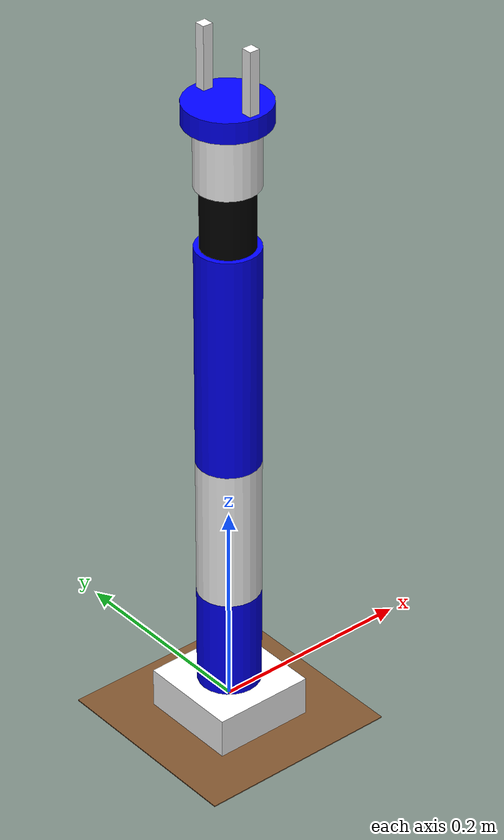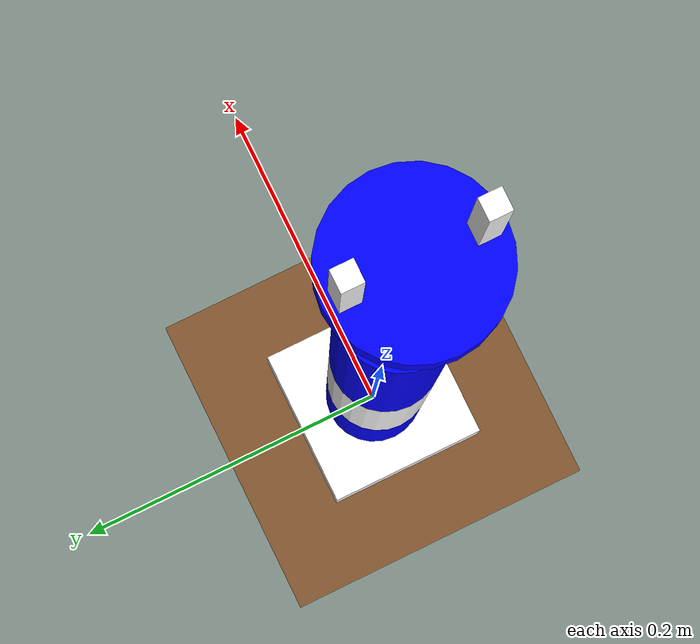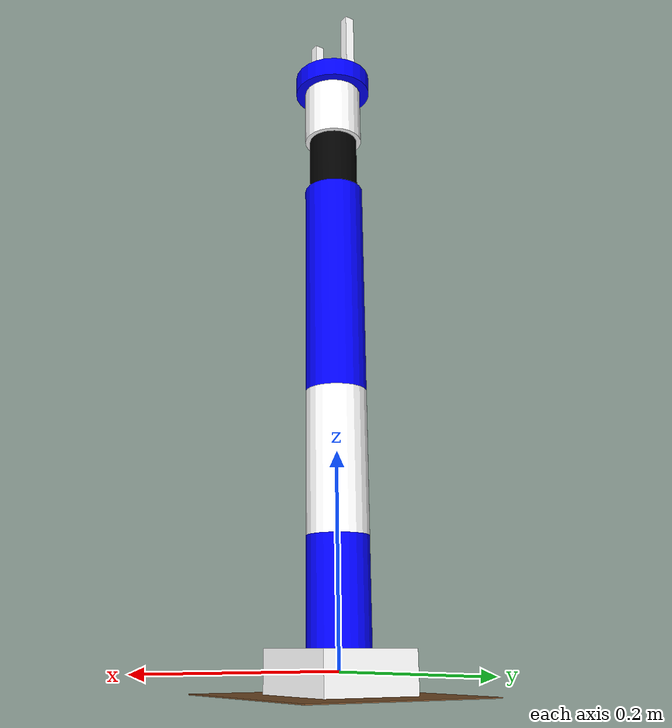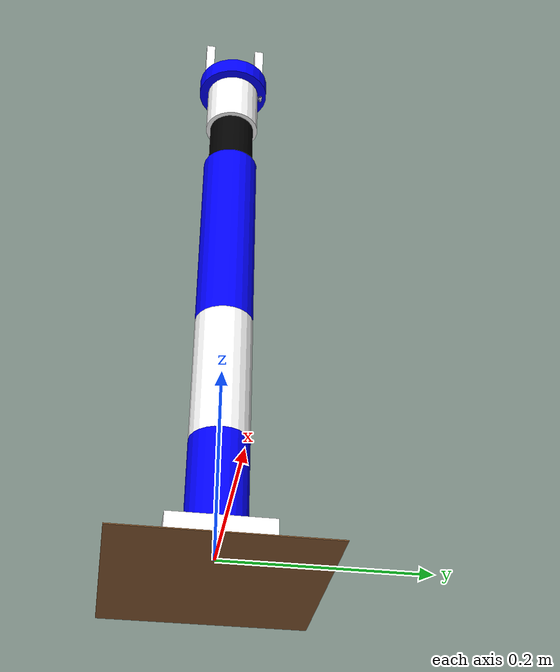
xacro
<?xml version="1.0"?>
<robot name="arm" xmlns:xacro="http://ros.org/wiki/xacro">

    <!-- Defining the colors used in this robot -->
    <material name="Black">
        <color rgba="0 0 0 1"/>
    </material>

    <material name="White">
        <color rgba="1 1 1 1"/>
    </material>

    <material name="Blue">
        <color rgba="0 0 1 1"/>
    </material>

    <material name="Red">
        <color rgba="1 0 0 1"/>
    </material>

    <!-- Constants -->

    <xacro:property name="M_PI" value="3.14159"/>

    <!-- link1 properties -->
    <xacro:property name="link1_width" value="0.03" />
    <xacro:property name="link1_len" value="0.10" />

    <!-- link2 properties -->
    <xacro:property name="link2_width" value="0.03" />
    <xacro:property name="link2_len" value="0.14" />

    <!-- link3 properties -->
    <xacro:property name="link3_width" value="0.03" />
    <xacro:property name="link3_len" value="0.22" />

    <!-- link4 properties -->
    <xacro:property name="link4_width" value="0.025" />
    <xacro:property name="link4_len" value="0.06" />

    <!-- link5 properties -->
    <xacro:property name="link5_width" value="0.03" />
    <xacro:property name="link5_len" value="0.06" />

    <!-- link6 properties -->
    <xacro:property name="link6_width" value="0.04" />
    <xacro:property name="link6_len" value="0.02" />

    <!-- Left gripper -->
    <xacro:property name="left_gripper_len" value="0.08" />
    <xacro:property name="left_gripper_width" value="0.01" />
    <xacro:property name="left_gripper_height" value="0.01" />

    <!-- Right gripper -->
    <xacro:property name="right_gripper_len" value="0.08" />
    <xacro:property name="right_gripper_width" value="0.01" />
    <xacro:property name="right_gripper_height" value="0.01" />

    <!-- Gripper frame -->
    <xacro:property name="grasp_frame_radius" value="0.001" />

    <!-- Inertial matrix -->
    <xacro:macro name="inertial_matrix" params="mass">
        <inertial>
            <mass value="${mass}" />
            <inertia ixx="1.0" ixy="0.0" ixz="0.0" iyy="0.5" iyz="0.0" izz="1.0" />
        </inertial>
    </xacro:macro>

    <!-- ///////////////////////////////////////   bottom_joint   ////////////////////////////////////////// -->
    <joint name="bottom_joint" type="fixed">
        <origin xyz="0 0 0" rpy="0 0 0" />
        <parent link="base_link"/>
        <child link="bottom_link"/>
    </joint>
    <link name="bottom_link">
        <visual>
              <origin xyz=" 0 0 -0.02"  rpy="0 0 0"/>
                  <geometry>
                       <box size="0.2 0.2 0.001" />
                  </geometry>
              <material name="Brown" />
        </visual>
        <collision>
            <origin xyz=" 0 0 -0.02"  rpy="0 0 0"/>
            <geometry>
                <box size="0.2 0.2 0.001" />
            </geometry>
        </collision>
        <xacro:inertial_matrix mass="500"/>
    </link>

    <!-- /////////////////////////////////////   BASE LINK    ////////////////////////////////////////////// -->
    <link name="base_link">
        <visual>
            <origin xyz="0 0 0" rpy="0 0 0" />
            <geometry>
                <box size="0.1 0.1 0.04" />
            </geometry>
            <material name="White" />
        </visual>
        <collision>
            <origin xyz="0 0 0" rpy="0 0 0" />
            <geometry>
                <box size="0.1 0.1 0.04" />
            </geometry>
        </collision>
    </link>

    <joint name="joint1" type="revolute">
        <parent link="base_link"/>
        <child link="link1"/>
        <origin xyz="0 0 0.02" rpy="0 ${M_PI/2} 0" />
        <axis xyz="-1 0 0" />
        <limit effort="300" velocity="1" lower="-2.96" upper="2.96"/>
        <dynamics damping="50" friction="1"/>
    </joint>

    <!-- /////////////////////////////////////   LINK1  ////////////////////////////////////////////// -->
    <link name="link1" >
        <visual>
            <origin xyz="-${link1_len/2} 0 0" rpy="0 ${M_PI/2} 0" />
            <geometry>
                <cylinder radius="${link1_width}" length="${link1_len}"/>
            </geometry>
            <material name="Blue" />
        </visual>
        <collision>
            <origin xyz="-${link1_len/2} 0 0" rpy="0 ${M_PI/2} 0" />
            <geometry>
                <cylinder radius="${link1_width}" length="${link1_len}"/>
            </geometry>
        </collision>
        <xacro:inertial_matrix mass="1"/>
    </link>

    <joint name="joint2" type="revolute">
        <parent link="link1"/>
        <child link="link2"/>
        <origin xyz="-${link1_len} 0 0.0" rpy="-${M_PI/2} 0 ${M_PI/2}" />
        <axis xyz="1 0 0" />
        <limit effort="300" velocity="1" lower="-2.35" upper="2.35" />
        <dynamics damping="50" friction="1"/>
    </joint>

    <!-- ///////////////////////////////////////   LINK2  ////////////////////////////////////////////// -->
    <link name="link2" >
        <visual>
            <origin xyz="0 0 ${link2_len/2}" rpy="0 0 0" />
            <geometry>
                <cylinder radius="${link2_width}" length="${link2_len}"/>
            </geometry>
            <material name="White" />
        </visual>

        <collision>
            <origin xyz="0 0 ${link2_len/2}" rpy="0 0 0" />
            <geometry>
                <cylinder radius="${link2_width}" length="${link2_len}"/>
            </geometry>
        </collision>
        <xacro:inertial_matrix mass="1"/>
    </link>

    <joint name="joint3" type="revolute">
        <parent link="link2"/>
        <child link="link3"/>
        <origin xyz="0 0 ${link2_len}" rpy="0 ${M_PI} 0" />
        <axis xyz="-1 0 0" />
        <limit effort="300" velocity="1" lower="-2.62" upper="2.62" />
        <dynamics damping="50" friction="1"/>
    </joint>

    <!-- /////////////////////////////////   LINK3  ///////////////////////////////////////////////////// -->
    <link name="link3" >
        <visual>
            <origin xyz="0 0 -${link3_len/2}" rpy="0 0 0" />
            <geometry>
                <cylinder radius="${link3_width}" length="${link3_len}"/>
            </geometry>
            <material name="Blue" />
        </visual>
        <collision>
            <origin xyz="0 0 -${link3_len/2}" rpy="0 0 0" />
            <geometry>
                <cylinder radius="${link3_width}" length="${link3_len}"/>
            </geometry>
        </collision>
        <xacro:inertial_matrix mass="1"/>
    </link>

    <joint name="joint4" type="revolute">
        <parent link="link3"/>
        <child link="link4"/>
        <origin xyz="0.0 0.0 -${link3_len}" rpy="0 ${M_PI/2} ${M_PI}" />
        <axis xyz="1 0 0" />
        <limit effort="300" velocity="1" lower="-2.62" upper="2.62" />
        <dynamics damping="50" friction="1"/>
    </joint>

    <!-- ///////////////////////////////////   LINK4  //////////////////////////////////////////////// -->
    <link name="link4" >
        <visual>
            <origin xyz="${link4_len/2} 0 0" rpy="0 ${M_PI/2} 0" />
            <geometry>
                <cylinder radius="${link4_width}" length="${link4_len}"/>
            </geometry>
            <material name="Black" />
        </visual>
        <collision>
            <origin xyz="${link4_len/2} 0 0" rpy="0 ${M_PI/2} 0" />
            <geometry>
                <cylinder radius="${link4_width}" length="${link4_len}"/>
            </geometry>
        </collision>
        <xacro:inertial_matrix mass="1"/>
    </link>

    <joint name="joint5" type="revolute">
        <parent link="link4"/>
        <child link="link5"/>
        <origin xyz="${link4_len} 0.0 0.0" rpy="0 ${M_PI/2} 0" />
        <axis xyz="1 0 0" />
        <limit effort="300" velocity="1" lower="-2.62" upper="2.62" />
        <dynamics damping="50" friction="1"/>
    </joint>

    <!-- //////////////////////////////////   LINK5  ///////////////////////////////////////////////// -->
    <link name="link5">
        <visual>
            <origin xyz="0 0 ${link4_len/2}" rpy="0 0 0" />
            <geometry>
                <cylinder radius="${link5_width}" length="${link5_len}"/>
            </geometry>
            <material name="White" />
        </visual>
        <collision>
            <origin xyz="0 0 ${link4_len/2} " rpy="0 0 0" />
            <geometry>
                <cylinder radius="${link5_width}" length="${link5_len}"/>
            </geometry>
        </collision>
        <xacro:inertial_matrix mass="1"/>
    </link>

    <joint name="joint6" type="revolute">
        <parent link="link5"/>
        <child link="link6"/>
        <origin xyz="0 0 ${link4_len}" rpy="${1.5*M_PI} -${M_PI/2} 0" />
        <axis xyz="1 0 0" />
        <limit effort="300" velocity="1" lower="-6.28" upper="6.28" />
        <dynamics damping="50" friction="1"/>
    </joint>

    <!-- ////////////////////////////////   LINK6  ///////////////////////////////////////////////// -->
    <link name="link6">
        <visual>
            <origin xyz="${link6_len/2} 0 0 " rpy="0 ${M_PI/2} 0" />
            <geometry>
                <cylinder radius="${link6_width}" length="${link6_len}"/>
            </geometry>
            <material name="Blue" />
        </visual>
        <collision>
            <origin xyz="${link6_len/2} 0 0" rpy="0 ${M_PI/2} 0" />
            <geometry>
                <cylinder radius="${link6_width}" length="${link6_len}"/>
            </geometry>
        </collision>
        <xacro:inertial_matrix mass="1"/>
    </link>

    <joint name="finger_joint1" type="prismatic">
        <parent link="link6"/>
        <child link="gripper_finger_link1"/>
        <origin xyz="0.0 0 0" />
        <axis xyz="0 1 0" />
        <limit effort="100" lower="0" upper="0.06" velocity="1.0"/>
        <dynamics damping="50" friction="1"/>
    </joint>

    <!-- //////////////////////////////////////   gripper   ////////////////////////////////////////////// -->
    <!-- LEFT GRIPPER AFT LINK -->
    <link name="gripper_finger_link1">
        <visual>
            <origin xyz="0.04 -0.03 0" />
            <geometry>
                <box size="${left_gripper_len} ${left_gripper_width} ${left_gripper_height}" />
            </geometry>
            <material name="White" />
        </visual>
        <collision>
            <origin xyz="0.04 -0.03 0" />
            <geometry>
                 <box size="${left_gripper_len} ${left_gripper_width} ${left_gripper_height}" />
            </geometry>

        </collision>
        <xacro:inertial_matrix mass="1"/>
    </link>

    <joint name="finger_joint2" type="fixed">
        <parent link="link6"/>
        <child link="gripper_finger_link2"/>
        <origin xyz="0.0 0 0" />
    </joint>

    <!-- RIGHT GRIPPER AFT LINK -->
    <link name="gripper_finger_link2">
        <visual>
            <origin xyz="0.04 0.03 0" />
            <geometry>
                 <box size="${left_gripper_len} ${left_gripper_width} ${left_gripper_height}" />
            </geometry>
            <material name="White" />
        </visual>
        <collision>
            <origin xyz="0.04 0.03 0" />
            <geometry>
               <box size="${left_gripper_len} ${left_gripper_width} ${left_gripper_height}" />
            </geometry>

        </collision>
        <xacro:inertial_matrix mass="1"/>
    </link>

    <!-- Grasping frame -->
    <link name="grasping_frame"/>

    <joint name="grasping_frame_joint" type="fixed">
      <parent link="link6"/>
      <child link="grasping_frame"/>
      <origin xyz="0.08 0 0" rpy="0 0 0"/>
    </joint>

    <!-- /////////////////////////////////   Gazebo   ////////////////////////////////////// -->
    <gazebo reference="bottom_link">
        <material>Gazebo/White</material>
    </gazebo>
    <gazebo reference="base_link">
        <material>Gazebo/White</material>
    </gazebo>
    <gazebo reference="link1">
        <material>Gazebo/Blue</material>
    </gazebo>
    <gazebo reference="link2">
        <material>Gazebo/White</material>
    </gazebo>
    <gazebo reference="link3">
        <material>Gazebo/Blue</material>
    </gazebo>
    <gazebo reference="link4">
        <material>Gazebo/Black</material>
    </gazebo>
    <gazebo reference="link5">
        <material>Gazebo/White</material>
    </gazebo>
    <gazebo reference="link6">
        <material>Gazebo/Blue</material>
    </gazebo>
    <gazebo reference="gripper_finger_link1">
        <material>Gazebo/White</material>
        <mu1>2000.0</mu1>
      <mu2>1000.0</mu2>
      <kp>10000000.0</kp>
      <kd>1.0</kd>
    </gazebo>
    <gazebo reference="gripper_finger_link2">
    <mu1>2000.0</mu1>
      <mu2>1000.0</mu2>
      <kp>10000000.0</kp>
      <kd>1.0</kd>
        <material>Gazebo/White</material>
    </gazebo>
    <gazebo>
     <plugin name="gazebo_grasp_fix" filename="libgazebo_grasp_fix.so">
           <arm>
             <arm_name>arm</arm_name>
             <palm_link>finger_joint2</palm_link>
             <gripper_link>gripper_finger2_link2</gripper_link>

             <palm_link>finger_joint1</palm_link>
             <gripper_link>gripper_finger2_link1</gripper_link>

           </arm>
       <forces_angle_tolerance>100</forces_angle_tolerance>
       <update_rate>120</update_rate>
       <grip_count_threshold>1</grip_count_threshold>
       <max_grip_count>2</max_grip_count>
       <release_tolerance>0.05</release_tolerance>
       <disable_collisions_on_attach>true</disable_collisions_on_attach>
       <contact_topic>__default_topic__</contact_topic>
     </plugin>
   </gazebo>

    <!-- Transmissions for ROS Control -->
    <xacro:macro name="transmission_block" params="joint_name">
        <transmission name="tran1">
            <type>transmission_interface/SimpleTransmission</type>
            <joint name="${joint_name}">
                <hardwareInterface>hardware_interface/PositionJointInterface</hardwareInterface>
            </joint>
            <actuator name="motor1">
                <hardwareInterface>hardware_interface/PositionJointInterface</hardwareInterface>
                <mechanicalReduction>1</mechanicalReduction>
            </actuator>
        </transmission>
    </xacro:macro>

    <xacro:transmission_block joint_name="joint1"/>
    <xacro:transmission_block joint_name="joint2"/>
    <xacro:transmission_block joint_name="joint3"/>
    <xacro:transmission_block joint_name="joint4"/>
    <xacro:transmission_block joint_name="joint5"/>
    <xacro:transmission_block joint_name="joint6"/>
    <xacro:transmission_block joint_name="finger_joint1"/>

    <!-- ros_control plugin -->
    <gazebo>
        <plugin name="gazebo_ros_control" filename="libgazebo_ros_control.so">
            <robotNamespace>/arm</robotNamespace>
        </plugin>
    </gazebo>

</robot>
